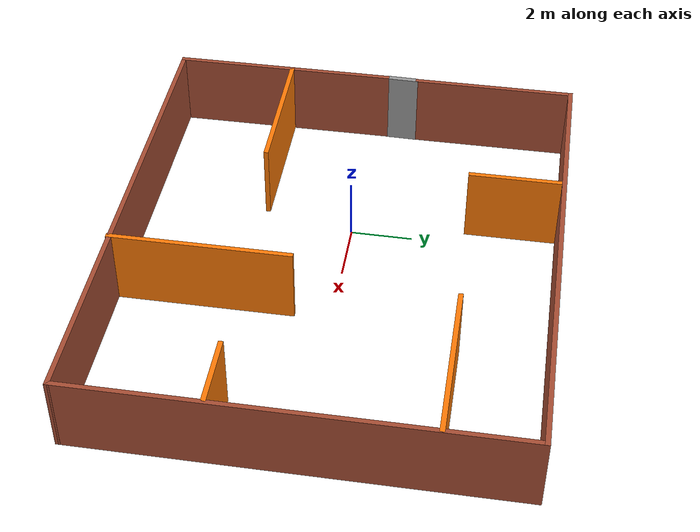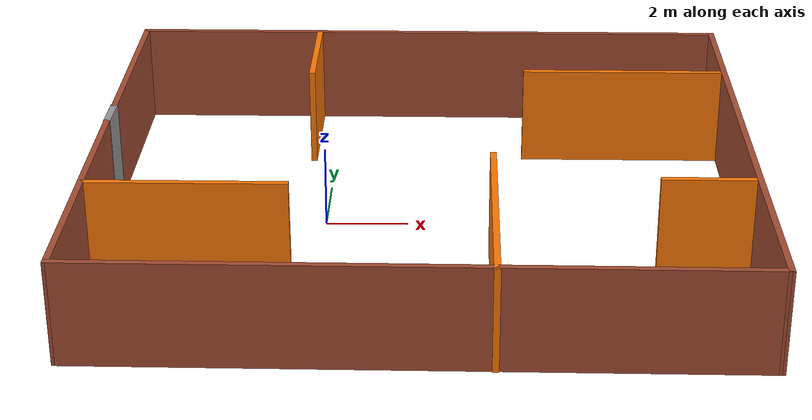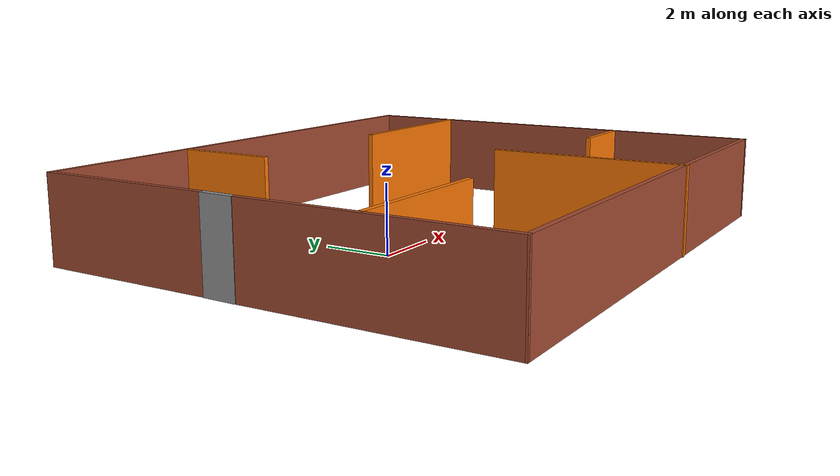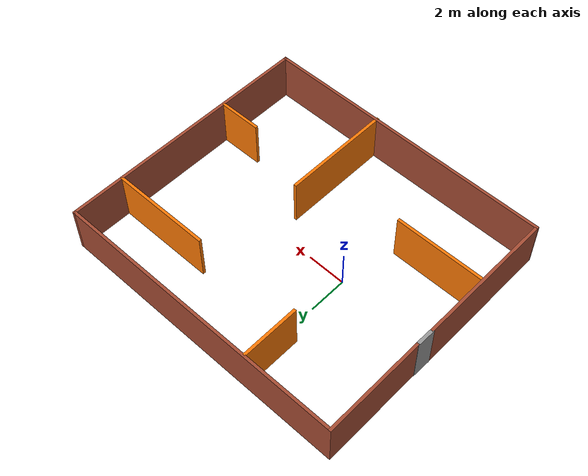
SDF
<?xml version='1.0'?>
<sdf version='1.6'>
  <model name='Building2'>
    <pose frame=''>2.3755 -0.066707 0 0 -0 0</pose>
    <link name='Door_0'>
      <collision name='Door_0_Collision'>
        <geometry>
          <box>
            <size>1 0.17 2.5</size>
          </box>
        </geometry>
        <pose frame=''>0 0 1.25 0 -0 0</pose>
      </collision>
      <visual name='Door_0_Visual'>
        <pose frame=''>0 0 1.25 0 -0 0</pose>
        <geometry>
          <box>
            <size>1 0.17 2.5</size>
          </box>
        </geometry>
        <material>
          <script>
            <uri>file://media/materials/scripts/gazebo.material</uri>
            <name>Gazebo/Grey</name>
          </script>
        </material>
      </visual>
      <pose frame=''>-7.7335 1.06671 0 0 0 -1.5903</pose>
    </link>
    <link name='Wall_0'>
      <collision name='Wall_0_Collision'>
        <geometry>
          <box>
            <size>7.387 0.15 2.5</size>
          </box>
        </geometry>
        <pose frame=''>0 0 1.25 0 -0 0</pose>
      </collision>
      <visual name='Wall_0_Visual'>
        <pose frame=''>0 0 1.25 0 -0 0</pose>
        <geometry>
          <box>
            <size>7.387 0.15 2.5</size>
          </box>
        </geometry>
        <material>
          <script>
            <uri>file://media/materials/scripts/gazebo.material</uri>
            <name>Gazebo/Bricks</name>
          </script>
          <ambient>1 1 1 1</ambient>
        </material>
        <meta>
          <layer>0</layer>
        </meta>
      </visual>
      <pose frame=''>-7.7395 -3.05179 0 0 0 -1.5708</pose>
    </link>
    <link name='Wall_1'>
      <collision name='Wall_1_Collision'>
        <geometry>
          <box>
            <size>15.6291 0.15 2.5</size>
          </box>
        </geometry>
        <pose frame=''>0 0 1.25 0 -0 0</pose>
      </collision>
      <visual name='Wall_1_Visual'>
        <pose frame=''>0 0 1.25 0 -0 0</pose>
        <geometry>
          <box>
            <size>15.6291 0.15 2.5</size>
          </box>
        </geometry>
        <material>
          <script>
            <uri>file://media/materials/scripts/gazebo.material</uri>
            <name>Gazebo/Bricks</name>
          </script>
          <ambient>1 1 1 1</ambient>
        </material>
        <meta>
          <layer>0</layer>
        </meta>
      </visual>
      <pose frame=''>0 -6.71629 0 0 0 -0.005943</pose>
    </link>
    <link name='Wall_11'>
      <collision name='Wall_11_Collision'>
        <geometry>
          <box>
            <size>5.75 0.15 2.5</size>
          </box>
        </geometry>
        <pose frame=''>0 0 1.25 0 -0 0</pose>
      </collision>
      <visual name='Wall_11_Visual'>
        <pose frame=''>0 0 1.25 0 -0 0</pose>
        <geometry>
          <box>
            <size>5.75 0.15 2.5</size>
          </box>
        </geometry>
        <material>
          <script>
            <uri>file://media/materials/scripts/gazebo.material</uri>
            <name>Gazebo/Grey</name>
          </script>
          <ambient>0.996078 0.47451 0.0196078 1</ambient>
        </material>
        <meta>
          <layer>0</layer>
        </meta>
      </visual>
      <pose frame=''>1.6725 -3.95929 0 0 -0 1.5708</pose>
    </link>
    <link name='Wall_14'>
      <collision name='Wall_14_Collision'>
        <geometry>
          <box>
            <size>2.25 0.15 2.5</size>
          </box>
        </geometry>
        <pose frame=''>0 0 1.25 0 -0 0</pose>
      </collision>
      <visual name='Wall_14_Visual'>
        <pose frame=''>0 0 1.25 0 -0 0</pose>
        <geometry>
          <box>
            <size>2.25 0.15 2.5</size>
          </box>
        </geometry>
        <material>
          <script>
            <uri>file://media/materials/scripts/gazebo.material</uri>
            <name>Gazebo/Grey</name>
          </script>
          <ambient>0.996078 0.47451 0.0196078 1</ambient>
        </material>
        <meta>
          <layer>0</layer>
        </meta>
      </visual>
      <pose frame=''>6.5995 -2.43729 0 0 -0 3.14159</pose>
    </link>
    <link name='Wall_17'>
      <collision name='Wall_17_Collision'>
        <geometry>
          <box>
            <size>5.25 0.15 2.5</size>
          </box>
        </geometry>
        <pose frame=''>0 0 1.25 0 -0 0</pose>
      </collision>
      <visual name='Wall_17_Visual'>
        <pose frame=''>0 0 1.25 0 -0 0</pose>
        <geometry>
          <box>
            <size>5.25 0.15 2.5</size>
          </box>
        </geometry>
        <material>
          <script>
            <uri>file://media/materials/scripts/gazebo.material</uri>
            <name>Gazebo/Grey</name>
          </script>
          <ambient>0.996078 0.47451 0.0196078 1</ambient>
        </material>
        <meta>
          <layer>0</layer>
        </meta>
      </visual>
      <pose frame=''>5.1575 4.00271 0 0 -0 3.14159</pose>
    </link>
    <link name='Wall_2'>
      <collision name='Wall_2_Collision'>
        <geometry>
          <box>
            <size>13.669 0.15 2.5</size>
          </box>
        </geometry>
        <pose frame=''>0 0 1.25 0 -0 0</pose>
      </collision>
      <visual name='Wall_2_Visual'>
        <pose frame=''>0 0 1.25 0 -0 0</pose>
        <geometry>
          <box>
            <size>13.669 0.15 2.5</size>
          </box>
        </geometry>
        <material>
          <script>
            <uri>file://media/materials/scripts/gazebo.material</uri>
            <name>Gazebo/Bricks</name>
          </script>
          <ambient>1 1 1 1</ambient>
        </material>
        <meta>
          <layer>0</layer>
        </meta>
      </visual>
      <pose frame=''>7.7395 -0.002793 0 0 -0 1.5708</pose>
    </link>
    <link name='Wall_3'>
      <collision name='Wall_3_Collision'>
        <geometry>
          <box>
            <size>15.6077 0.15 2.5</size>
          </box>
        </geometry>
        <pose frame=''>0 0 1.25 0 -0 0</pose>
      </collision>
      <visual name='Wall_3_Visual'>
        <pose frame=''>0 0 1.25 0 -0 0</pose>
        <geometry>
          <box>
            <size>15.6077 0.15 2.5</size>
          </box>
        </geometry>
        <material>
          <script>
            <uri>file://media/materials/scripts/gazebo.material</uri>
            <name>Gazebo/Bricks</name>
          </script>
          <ambient>1 1 1 1</ambient>
        </material>
        <meta>
          <layer>0</layer>
        </meta>
      </visual>
      <pose frame=''>0.0105 6.75971 0 0 -0 3.1412</pose>
    </link>
    <link name='Wall_4'>
      <collision name='Wall_4_Collision'>
        <geometry>
          <box>
            <size>5.346 0.15 2.5</size>
          </box>
        </geometry>
        <pose frame=''>0 0 1.25 0 -0 0</pose>
      </collision>
      <visual name='Wall_4_Visual'>
        <pose frame=''>0 0 1.25 0 -0 0</pose>
        <geometry>
          <box>
            <size>5.346 0.15 2.5</size>
          </box>
        </geometry>
        <material>
          <script>
            <uri>file://media/materials/scripts/gazebo.material</uri>
            <name>Gazebo/Bricks</name>
          </script>
          <ambient>1 1 1 1</ambient>
        </material>
        <meta>
          <layer>0</layer>
        </meta>
      </visual>
      <pose frame=''>-7.7185 4.16471 0 0 0 -1.5708</pose>
    </link>
    <link name='Wall_7'>
      <collision name='Wall_7_Collision'>
        <geometry>
          <box>
            <size>4.75 0.15 2.5</size>
          </box>
        </geometry>
        <pose frame=''>0 0 1.25 0 -0 0</pose>
      </collision>
      <visual name='Wall_7_Visual'>
        <pose frame=''>0 0 1.25 0 -0 0</pose>
        <geometry>
          <box>
            <size>4.75 0.15 2.5</size>
          </box>
        </geometry>
        <material>
          <script>
            <uri>file://media/materials/scripts/gazebo.material</uri>
            <name>Gazebo/Grey</name>
          </script>
          <ambient>0.996078 0.47451 0.0196078 1</ambient>
        </material>
        <meta>
          <layer>0</layer>
        </meta>
      </visual>
      <pose frame=''>-5.3805 -2.82729 0 0 -0 0</pose>
    </link>
    <link name='Wall_9'>
      <collision name='Wall_9_Collision'>
        <geometry>
          <box>
            <size>3 0.15 2.5</size>
          </box>
        </geometry>
        <pose frame=''>0 0 1.25 0 -0 0</pose>
      </collision>
      <visual name='Wall_9_Visual'>
        <pose frame=''>0 0 1.25 0 -0 0</pose>
        <geometry>
          <box>
            <size>3 0.15 2.5</size>
          </box>
        </geometry>
        <material>
          <script>
            <uri>file://media/materials/scripts/gazebo.material</uri>
            <name>Gazebo/Grey</name>
          </script>
          <ambient>0.996078 0.47451 0.0196078 1</ambient>
        </material>
        <meta>
          <layer>0</layer>
        </meta>
      </visual>
      <pose frame=''>-2.9545 5.23471 0 0 0 -1.5708</pose>
    </link>
    <static>1</static>
  </model>
</sdf>
